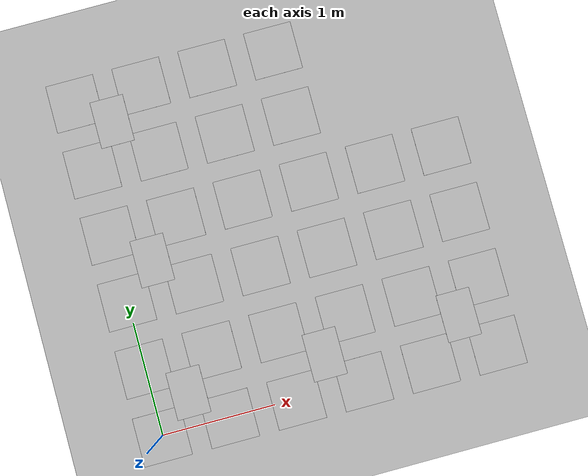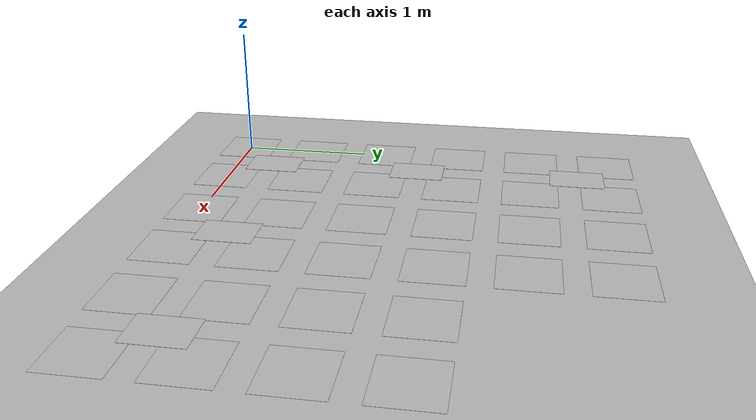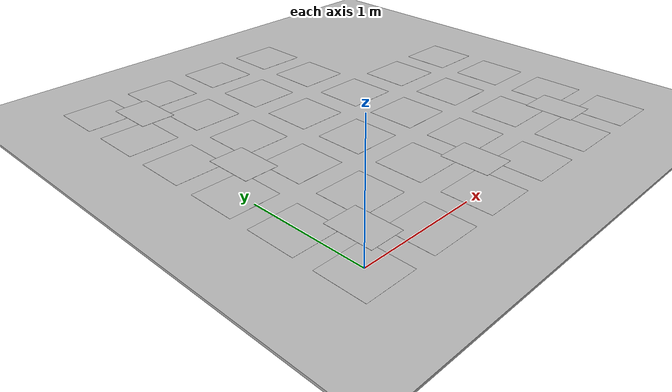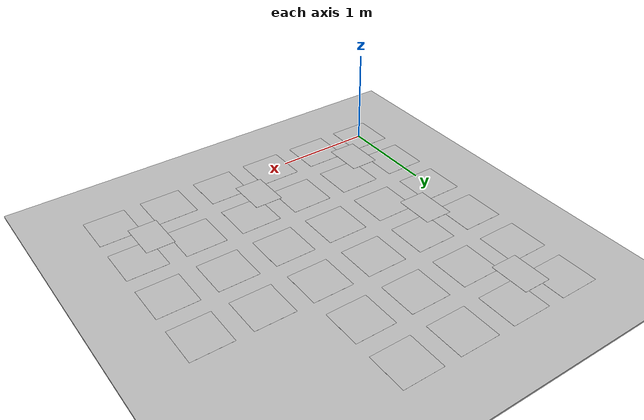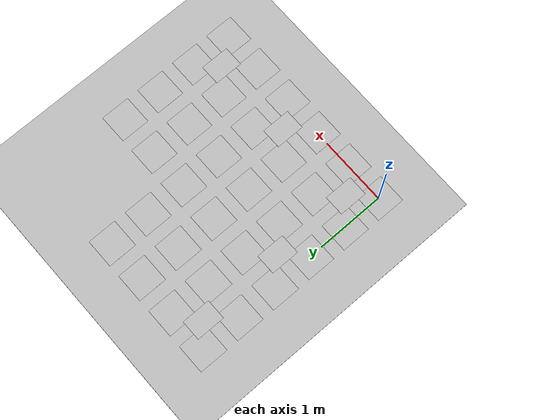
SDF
<sdf version="1.7">
 <world name="default">
  <light name="sun" type="directional">
   <pose>0 0 10 0 -0 0</pose>
   <diffuse>0.8 0.8 0.8 1</diffuse>
   <specular>0.2 0.2 0.2 1</specular>
   <attenuation>
    <range>1000</range>
    <constant>0.9</constant>
    <linear>0.01</linear>
    <quadratic>0.001</quadratic>
   </attenuation>
   <direction>-0.5 0.1 -0.9</direction>
   <spot><inner_angle>0</inner_angle><outer_angle>0</outer_angle><falloff>0</falloff></spot>
  </light>
  <model name="parquet_plane">
   <static>1</static>
   <link name="link">
    <collision name="collision"><geometry><box><size>200 200 0.02</size></box></geometry></collision>
    <visual name="visual">
     <cast_shadows>0</cast_shadows>
     <geometry><box><size>200 200 0.02</size></box></geometry>
     <material>
      <script>
       <uri>model://parquet_plane/materials/scripts</uri>
       <uri>model://parquet_plane/materials/textures</uri>
       <name>parquet</name>
      </script>
     </material>
    </visual>
   </link>
   <pose>0 0 -0.01 0 -0 0</pose>
  </model>
  <scene>
   <ambient>0.8 0.8 0.8 1</ambient>
   <background>0.8 0.9 1 1</background>
   <shadows>0</shadows>
   <grid>0</grid>
   <origin_visual>0</origin_visual>
  </scene>
  <physics name="default_physics" default="0" type="ode">
   <ode>
    <solver>
     <type>quick</type>
     <iters>10</iters>
     <sor>1.3</sor>
     <use_dynamic_moi_rescaling>0</use_dynamic_moi_rescaling>
    </solver>
    <constraints>
     <cfm>0</cfm>
     <erp>0.2</erp>
     <contact_max_correcting_vel>100</contact_max_correcting_vel>
     <contact_surface_layer>0.001</contact_surface_layer>
    </constraints>
   </ode>
   <max_step_size>0.004</max_step_size>
   <real_time_factor>1</real_time_factor>
   <real_time_update_rate>250</real_time_update_rate>
  </physics>
  <gravity>0 0 -9.8066</gravity>
  <magnetic_field>6e-06 2.3e-05 -4.2e-05</magnetic_field>
  <atmosphere type="adiabatic"/>
  <spherical_coordinates>
   <surface_model>EARTH_WGS84</surface_model>
   <latitude_deg>0</latitude_deg>
   <longitude_deg>0</longitude_deg>
   <elevation>0</elevation>
   <heading_deg>0</heading_deg>
  </spherical_coordinates>
  <model name="aruco_2_32">
   <static>1</static>
   <link name="aruco_2_32_link">
    <visual name="visual_marker_2_27">
     <pose>0 0 0 0 -0 1.5708</pose>
     <cast_shadows>0</cast_shadows>
     <geometry><box><size>0.426667 0.426667 0.001</size></box></geometry>
     <material>
      <script>
       <uri>model://aruco_ws_map_txt/materials/scripts</uri>
       <uri>model://aruco_ws_map_txt/materials/textures</uri>
       <name>aruco/marker_2_27</name>
      </script>
     </material>
    </visual>
    <visual name="visual_marker_2_28">
     <pose>0.6 0 0 0 -0 1.5708</pose>
     <cast_shadows>0</cast_shadows>
     <geometry><box><size>0.426667 0.426667 0.001</size></box></geometry>
     <material>
      <script>
       <uri>model://aruco_ws_map_txt/materials/scripts</uri>
       <uri>model://aruco_ws_map_txt/materials/textures</uri>
       <name>aruco/marker_2_28</name>
      </script>
     </material>
    </visual>
    <visual name="visual_marker_2_19">
     <pose>1.2 0 0 0 -0 1.5708</pose>
     <cast_shadows>0</cast_shadows>
     <geometry><box><size>0.426667 0.426667 0.001</size></box></geometry>
     <material>
      <script>
       <uri>model://aruco_ws_map_txt/materials/scripts</uri>
       <uri>model://aruco_ws_map_txt/materials/textures</uri>
       <name>aruco/marker_2_19</name>
      </script>
     </material>
    </visual>
    <visual name="visual_marker_2_20">
     <pose>1.8 0 0 0 -0 1.5708</pose>
     <cast_shadows>0</cast_shadows>
     <geometry><box><size>0.426667 0.426667 0.001</size></box></geometry>
     <material>
      <script>
       <uri>model://aruco_ws_map_txt/materials/scripts</uri>
       <uri>model://aruco_ws_map_txt/materials/textures</uri>
       <name>aruco/marker_2_20</name>
      </script>
     </material>
    </visual>
    <visual name="visual_marker_2_25">
     <pose>2.4 0 0 0 -0 1.5708</pose>
     <cast_shadows>0</cast_shadows>
     <geometry><box><size>0.426667 0.426667 0.001</size></box></geometry>
     <material>
      <script>
       <uri>model://aruco_ws_map_txt/materials/scripts</uri>
       <uri>model://aruco_ws_map_txt/materials/textures</uri>
       <name>aruco/marker_2_25</name>
      </script>
     </material>
    </visual>
    <visual name="visual_marker_2_26">
     <pose>3 0 0 0 -0 1.5708</pose>
     <cast_shadows>0</cast_shadows>
     <geometry><box><size>0.426667 0.426667 0.001</size></box></geometry>
     <material>
      <script>
       <uri>model://aruco_ws_map_txt/materials/scripts</uri>
       <uri>model://aruco_ws_map_txt/materials/textures</uri>
       <name>aruco/marker_2_26</name>
      </script>
     </material>
    </visual>
    <visual name="visual_marker_2_31">
     <pose>0 0.6 0 0 -0 1.5708</pose>
     <cast_shadows>0</cast_shadows>
     <geometry><box><size>0.426667 0.426667 0.001</size></box></geometry>
     <material>
      <script>
       <uri>model://aruco_ws_map_txt/materials/scripts</uri>
       <uri>model://aruco_ws_map_txt/materials/textures</uri>
       <name>aruco/marker_2_31</name>
      </script>
     </material>
    </visual>
    <visual name="visual_marker_2_32">
     <pose>0.6 0.6 0 0 -0 1.5708</pose>
     <cast_shadows>0</cast_shadows>
     <geometry><box><size>0.426667 0.426667 0.001</size></box></geometry>
     <material>
      <script>
       <uri>model://aruco_ws_map_txt/materials/scripts</uri>
       <uri>model://aruco_ws_map_txt/materials/textures</uri>
       <name>aruco/marker_2_32</name>
      </script>
     </material>
    </visual>
    <visual name="visual_marker_2_23">
     <pose>1.2 0.6 0 0 -0 1.5708</pose>
     <cast_shadows>0</cast_shadows>
     <geometry><box><size>0.426667 0.426667 0.001</size></box></geometry>
     <material>
      <script>
       <uri>model://aruco_ws_map_txt/materials/scripts</uri>
       <uri>model://aruco_ws_map_txt/materials/textures</uri>
       <name>aruco/marker_2_23</name>
      </script>
     </material>
    </visual>
    <visual name="visual_marker_2_24">
     <pose>1.8 0.6 0 0 -0 1.5708</pose>
     <cast_shadows>0</cast_shadows>
     <geometry><box><size>0.426667 0.426667 0.001</size></box></geometry>
     <material>
      <script>
       <uri>model://aruco_ws_map_txt/materials/scripts</uri>
       <uri>model://aruco_ws_map_txt/materials/textures</uri>
       <name>aruco/marker_2_24</name>
      </script>
     </material>
    </visual>
    <visual name="visual_marker_2_29">
     <pose>2.4 0.6 0 0 -0 1.5708</pose>
     <cast_shadows>0</cast_shadows>
     <geometry><box><size>0.426667 0.426667 0.001</size></box></geometry>
     <material>
      <script>
       <uri>model://aruco_ws_map_txt/materials/scripts</uri>
       <uri>model://aruco_ws_map_txt/materials/textures</uri>
       <name>aruco/marker_2_29</name>
      </script>
     </material>
    </visual>
    <visual name="visual_marker_2_30">
     <pose>3 0.6 0 0 -0 1.5708</pose>
     <cast_shadows>0</cast_shadows>
     <geometry><box><size>0.426667 0.426667 0.001</size></box></geometry>
     <material>
      <script>
       <uri>model://aruco_ws_map_txt/materials/scripts</uri>
       <uri>model://aruco_ws_map_txt/materials/textures</uri>
       <name>aruco/marker_2_30</name>
      </script>
     </material>
    </visual>
    <visual name="visual_marker_2_1">
     <pose>0 1.2 0 0 -0 1.5708</pose>
     <cast_shadows>0</cast_shadows>
     <geometry><box><size>0.426667 0.426667 0.001</size></box></geometry>
     <material>
      <script>
       <uri>model://aruco_ws_map_txt/materials/scripts</uri>
       <uri>model://aruco_ws_map_txt/materials/textures</uri>
       <name>aruco/marker_2_1</name>
      </script>
     </material>
    </visual>
    <visual name="visual_marker_2_2">
     <pose>0.6 1.2 0 0 -0 1.5708</pose>
     <cast_shadows>0</cast_shadows>
     <geometry><box><size>0.426667 0.426667 0.001</size></box></geometry>
     <material>
      <script>
       <uri>model://aruco_ws_map_txt/materials/scripts</uri>
       <uri>model://aruco_ws_map_txt/materials/textures</uri>
       <name>aruco/marker_2_2</name>
      </script>
     </material>
    </visual>
    <visual name="visual_marker_2_3">
     <pose>1.2 1.2 0 0 -0 1.5708</pose>
     <cast_shadows>0</cast_shadows>
     <geometry><box><size>0.426667 0.426667 0.001</size></box></geometry>
     <material>
      <script>
       <uri>model://aruco_ws_map_txt/materials/scripts</uri>
       <uri>model://aruco_ws_map_txt/materials/textures</uri>
       <name>aruco/marker_2_3</name>
      </script>
     </material>
    </visual>
    <visual name="visual_marker_2_4">
     <pose>1.8 1.2 0 0 -0 1.5708</pose>
     <cast_shadows>0</cast_shadows>
     <geometry><box><size>0.426667 0.426667 0.001</size></box></geometry>
     <material>
      <script>
       <uri>model://aruco_ws_map_txt/materials/scripts</uri>
       <uri>model://aruco_ws_map_txt/materials/textures</uri>
       <name>aruco/marker_2_4</name>
      </script>
     </material>
    </visual>
    <visual name="visual_marker_2_17">
     <pose>2.4 1.2 0 0 -0 1.5708</pose>
     <cast_shadows>0</cast_shadows>
     <geometry><box><size>0.426667 0.426667 0.001</size></box></geometry>
     <material>
      <script>
       <uri>model://aruco_ws_map_txt/materials/scripts</uri>
       <uri>model://aruco_ws_map_txt/materials/textures</uri>
       <name>aruco/marker_2_17</name>
      </script>
     </material>
    </visual>
    <visual name="visual_marker_2_18">
     <pose>3 1.2 0 0 -0 1.5708</pose>
     <cast_shadows>0</cast_shadows>
     <geometry><box><size>0.426667 0.426667 0.001</size></box></geometry>
     <material>
      <script>
       <uri>model://aruco_ws_map_txt/materials/scripts</uri>
       <uri>model://aruco_ws_map_txt/materials/textures</uri>
       <name>aruco/marker_2_18</name>
      </script>
     </material>
    </visual>
    <visual name="visual_marker_2_5">
     <pose>0 1.8 0 0 -0 1.5708</pose>
     <cast_shadows>0</cast_shadows>
     <geometry><box><size>0.426667 0.426667 0.001</size></box></geometry>
     <material>
      <script>
       <uri>model://aruco_ws_map_txt/materials/scripts</uri>
       <uri>model://aruco_ws_map_txt/materials/textures</uri>
       <name>aruco/marker_2_5</name>
      </script>
     </material>
    </visual>
    <visual name="visual_marker_2_6">
     <pose>0.6 1.8 0 0 -0 1.5708</pose>
     <cast_shadows>0</cast_shadows>
     <geometry><box><size>0.426667 0.426667 0.001</size></box></geometry>
     <material>
      <script>
       <uri>model://aruco_ws_map_txt/materials/scripts</uri>
       <uri>model://aruco_ws_map_txt/materials/textures</uri>
       <name>aruco/marker_2_6</name>
      </script>
     </material>
    </visual>
    <visual name="visual_marker_2_7">
     <pose>1.2 1.8 0 0 -0 1.5708</pose>
     <cast_shadows>0</cast_shadows>
     <geometry><box><size>0.426667 0.426667 0.001</size></box></geometry>
     <material>
      <script>
       <uri>model://aruco_ws_map_txt/materials/scripts</uri>
       <uri>model://aruco_ws_map_txt/materials/textures</uri>
       <name>aruco/marker_2_7</name>
      </script>
     </material>
    </visual>
    <visual name="visual_marker_2_8">
     <pose>1.8 1.8 0 0 -0 1.5708</pose>
     <cast_shadows>0</cast_shadows>
     <geometry><box><size>0.426667 0.426667 0.001</size></box></geometry>
     <material>
      <script>
       <uri>model://aruco_ws_map_txt/materials/scripts</uri>
       <uri>model://aruco_ws_map_txt/materials/textures</uri>
       <name>aruco/marker_2_8</name>
      </script>
     </material>
    </visual>
    <visual name="visual_marker_2_21">
     <pose>2.4 1.8 0 0 -0 1.5708</pose>
     <cast_shadows>0</cast_shadows>
     <geometry><box><size>0.426667 0.426667 0.001</size></box></geometry>
     <material>
      <script>
       <uri>model://aruco_ws_map_txt/materials/scripts</uri>
       <uri>model://aruco_ws_map_txt/materials/textures</uri>
       <name>aruco/marker_2_21</name>
      </script>
     </material>
    </visual>
    <visual name="visual_marker_2_22">
     <pose>3 1.8 0 0 -0 1.5708</pose>
     <cast_shadows>0</cast_shadows>
     <geometry><box><size>0.426667 0.426667 0.001</size></box></geometry>
     <material>
      <script>
       <uri>model://aruco_ws_map_txt/materials/scripts</uri>
       <uri>model://aruco_ws_map_txt/materials/textures</uri>
       <name>aruco/marker_2_22</name>
      </script>
     </material>
    </visual>
    <visual name="visual_marker_2_9">
     <pose>0 2.4 0 0 -0 1.5708</pose>
     <cast_shadows>0</cast_shadows>
     <geometry><box><size>0.426667 0.426667 0.001</size></box></geometry>
     <material>
      <script>
       <uri>model://aruco_ws_map_txt/materials/scripts</uri>
       <uri>model://aruco_ws_map_txt/materials/textures</uri>
       <name>aruco/marker_2_9</name>
      </script>
     </material>
    </visual>
    <visual name="visual_marker_2_10">
     <pose>0.6 2.4 0 0 -0 1.5708</pose>
     <cast_shadows>0</cast_shadows>
     <geometry><box><size>0.426667 0.426667 0.001</size></box></geometry>
     <material>
      <script>
       <uri>model://aruco_ws_map_txt/materials/scripts</uri>
       <uri>model://aruco_ws_map_txt/materials/textures</uri>
       <name>aruco/marker_2_10</name>
      </script>
     </material>
    </visual>
    <visual name="visual_marker_2_11">
     <pose>1.2 2.4 0 0 -0 1.5708</pose>
     <cast_shadows>0</cast_shadows>
     <geometry><box><size>0.426667 0.426667 0.001</size></box></geometry>
     <material>
      <script>
       <uri>model://aruco_ws_map_txt/materials/scripts</uri>
       <uri>model://aruco_ws_map_txt/materials/textures</uri>
       <name>aruco/marker_2_11</name>
      </script>
     </material>
    </visual>
    <visual name="visual_marker_2_12">
     <pose>1.8 2.4 0 0 -0 1.5708</pose>
     <cast_shadows>0</cast_shadows>
     <geometry><box><size>0.426667 0.426667 0.001</size></box></geometry>
     <material>
      <script>
       <uri>model://aruco_ws_map_txt/materials/scripts</uri>
       <uri>model://aruco_ws_map_txt/materials/textures</uri>
       <name>aruco/marker_2_12</name>
      </script>
     </material>
    </visual>
    <visual name="visual_marker_2_13">
     <pose>0 3 0 0 -0 1.5708</pose>
     <cast_shadows>0</cast_shadows>
     <geometry><box><size>0.426667 0.426667 0.001</size></box></geometry>
     <material>
      <script>
       <uri>model://aruco_ws_map_txt/materials/scripts</uri>
       <uri>model://aruco_ws_map_txt/materials/textures</uri>
       <name>aruco/marker_2_13</name>
      </script>
     </material>
    </visual>
    <visual name="visual_marker_2_14">
     <pose>0.6 3 0 0 -0 1.5708</pose>
     <cast_shadows>0</cast_shadows>
     <geometry><box><size>0.426667 0.426667 0.001</size></box></geometry>
     <material>
      <script>
       <uri>model://aruco_ws_map_txt/materials/scripts</uri>
       <uri>model://aruco_ws_map_txt/materials/textures</uri>
       <name>aruco/marker_2_14</name>
      </script>
     </material>
    </visual>
    <visual name="visual_marker_2_15">
     <pose>1.2 3 0 0 -0 1.5708</pose>
     <cast_shadows>0</cast_shadows>
     <geometry><box><size>0.426667 0.426667 0.001</size></box></geometry>
     <material>
      <script>
       <uri>model://aruco_ws_map_txt/materials/scripts</uri>
       <uri>model://aruco_ws_map_txt/materials/textures</uri>
       <name>aruco/marker_2_15</name>
      </script>
     </material>
    </visual>
    <visual name="visual_marker_2_16">
     <pose>1.8 3 0 0 -0 1.5708</pose>
     <cast_shadows>0</cast_shadows>
     <geometry><box><size>0.426667 0.426667 0.001</size></box></geometry>
     <material>
      <script>
       <uri>model://aruco_ws_map_txt/materials/scripts</uri>
       <uri>model://aruco_ws_map_txt/materials/textures</uri>
       <name>aruco/marker_2_16</name>
      </script>
     </material>
    </visual>
   </link>
   <pose>-0.008599 -0.008073 0 0 -0 0</pose>
  </model>
  <model name="flag">
   <static>1</static>
   <link name="flag_link">
    <pose>0 0 0.001 0 -0 1.5708</pose>
    <visual name="flag_visual">
     <cast_shadows>0</cast_shadows>
     <geometry><box><size>0.42 0.297 0.001</size></box></geometry>
     <material>
      <script>
       <uri>model://austria/materials/scripts</uri>
       <uri>model://austria/materials/textures</uri>
       <name>austria_material</name>
      </script>
     </material>
    </visual>
   </link>
   <pose>0.265851 2.75602 0 0 -0 0</pose>
  </model>
  <model name="flag_0">
   <static>1</static>
   <link name="flag_link">
    <pose>0 0 0.001 0 -0 1.5708</pose>
    <visual name="flag_visual">
     <cast_shadows>0</cast_shadows>
     <geometry><box><size>0.42 0.297 0.001</size></box></geometry>
     <material>
      <script>
       <uri>model://brasil/materials/scripts</uri>
       <uri>model://brasil/materials/textures</uri>
       <name>brasil_material</name>
      </script>
     </material>
    </visual>
   </link>
   <pose>0.304791 0.298169 0 0 -0 0</pose>
  </model>
  <model name="flag_1">
   <static>1</static>
   <link name="flag_link">
    <pose>0 0 0.001 0 -0 1.5708</pose>
    <visual name="flag_visual">
     <cast_shadows>0</cast_shadows>
     <geometry><box><size>0.42 0.297 0.001</size></box></geometry>
     <material>
      <script>
       <uri>model://china/materials/scripts</uri>
       <uri>model://china/materials/textures</uri>
       <name>china_material</name>
      </script>
     </material>
    </visual>
   </link>
   <pose>1.52807 0.307044 0 0 -0 0</pose>
  </model>
  <model name="flag_2">
   <static>1</static>
   <link name="flag_link">
    <pose>0 0 0.001 0 -0 1.5708</pose>
    <visual name="flag_visual">
     <cast_shadows>0</cast_shadows>
     <geometry><box><size>0.42 0.297 0.001</size></box></geometry>
     <material>
      <script>
       <uri>model://france/materials/scripts</uri>
       <uri>model://france/materials/textures</uri>
       <name>france_material</name>
      </script>
     </material>
    </visual>
   </link>
   <pose>2.74085 0.331365 0 0 -0 0</pose>
  </model>
  <model name="flag_3">
   <static>1</static>
   <link name="flag_link">
    <pose>0 0 0.001 0 -0 1.5708</pose>
    <visual name="flag_visual">
     <cast_shadows>0</cast_shadows>
     <geometry><box><size>0.42 0.297 0.001</size></box></geometry>
     <material>
      <script>
       <uri>model://russia/materials/scripts</uri>
       <uri>model://russia/materials/textures</uri>
       <name>russia_material</name>
      </script>
     </material>
    </visual>
   </link>
   <pose>0.294539 1.48402 0 0 -0 0</pose>
  </model>
 </world>
</sdf>
